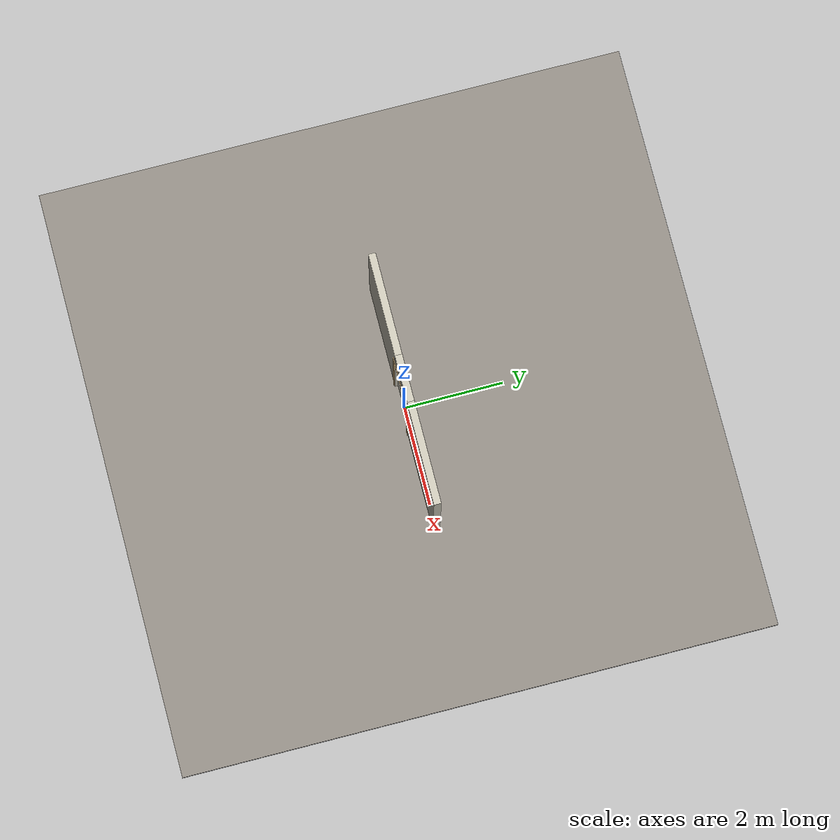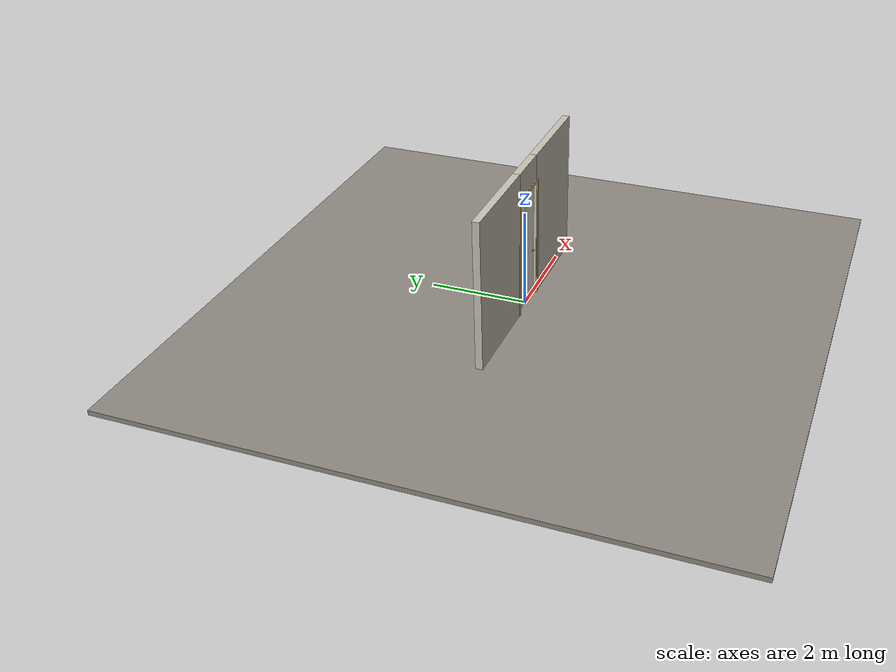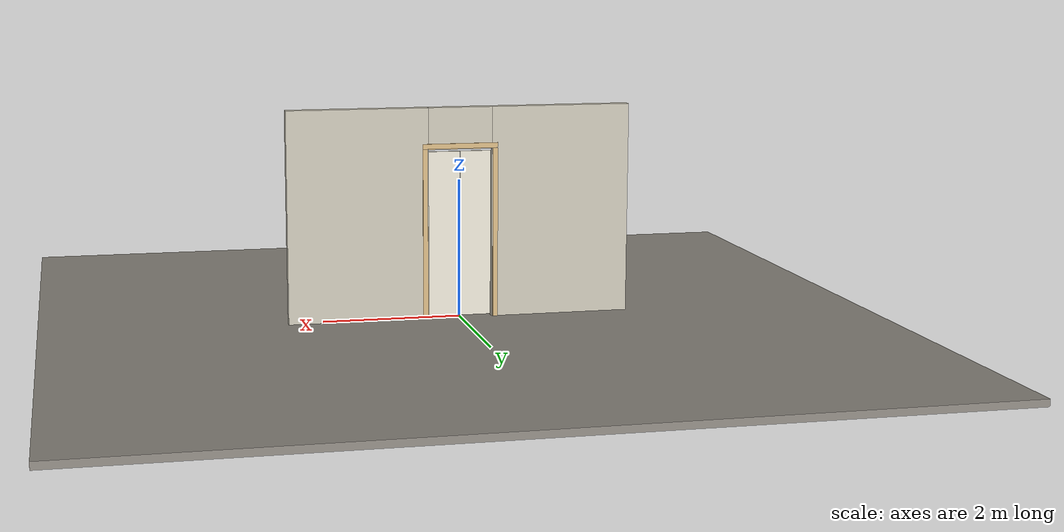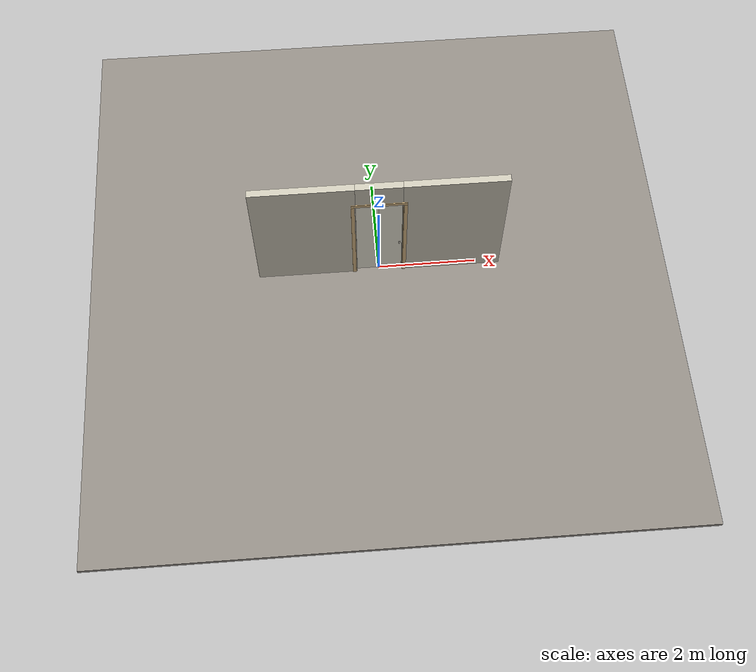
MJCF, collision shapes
<?xml version="1.0" ?>
<mujoco model="db0137_bifold_full">
  <compiler angle="radian" meshdir="../../hardware" texturedir="../../textures" autolimits="true" inertiafromgeom="false"/>
  <option timestep="0.002" integrator="implicitfast" cone="elliptic" impratio="10" noslip_iterations="3">
    <flag multiccd="enable"/>
  </option>
  <size memory="16M"/>
  <default>
    <geom condim="4" solref="0.005 1" solimp="0.95 0.99 0.001"/>
    <joint solreflimit="0.005 1" solimplimit="0.95 0.99 0.001"/>
    <tendon solreflimit="0.005 1"/>
    <equality solref="0.002 1"/>
  </default>
  <visual>
    <headlight ambient="0.4 0.4 0.4" diffuse="0.7 0.7 0.7" specular="0.2 0.2 0.2"/>
    <quality shadowsize="4096"/>
    <map znear="0.01" zfar="60"/>
  </visual>
  <asset>
    <mesh name="knob_13f7a2a65f" file="knob_13f7a2a65f.obj"/>
    <material name="mat_floor" rgba="0.55 0.53 0.5 1" specular="0.2" shininess="0.15" reflectance="0"/>
    <material name="mat_wall" rgba="0.78 0.76 0.7 1" specular="0.2" shininess="0.1" reflectance="0"/>
    <material name="mat_frame" rgba="0.82 0.7 0.5 1" specular="0.2" shininess="0.45" reflectance="0"/>
    <material name="mat_track" rgba="0.8 0.81 0.83 1" specular="0.8" shininess="0.6" reflectance="0.4"/>
    <material name="mat_hinge" rgba="0.65 0.66 0.68 1" specular="0.74" shininess="0.5" reflectance="0.36"/>
    <material name="mat_panel_0_0" rgba="0.9 0.88 0.82 1" specular="0.2" shininess="0.44" reflectance="0"/>
    <material name="mat_panel_0_0_louver" rgba="0.765 0.748 0.697 1" specular="0.2" shininess="0.4" reflectance="0"/>
    <material name="mat_panel_0_1" rgba="0.9 0.88 0.82 1" specular="0.2" shininess="0.44" reflectance="0"/>
    <material name="mat_panel_0_1_louver" rgba="0.765 0.748 0.697 1" specular="0.2" shininess="0.4" reflectance="0"/>
    <material name="mat_op_nickel_satin" rgba="0.72 0.7 0.66 1" specular="0.8" shininess="0.65" reflectance="0.4"/>
    <texture name="skybox" type="skybox" builtin="gradient" rgb1="0.6 0.7 0.85" rgb2="0.9 0.92 0.95" width="256" height="256"/>
  </asset>
  <worldbody>
    <light name="sun" pos="1.5 -2.5 4" dir="-0.3 0.5 -0.8" directional="true" diffuse="0.8 0.8 0.8" specular="0.3 0.3 0.3" castshadow="true"/>
    <light name="fill" pos="-1.5 2.5 3" dir="0.3 -0.5 -0.7" directional="true" diffuse="0.35 0.35 0.4" castshadow="false"/>
    <camera name="robot_view" pos="0 -2.926563 2.046937" xyaxes="1 0 0 0 0.26963 0.962964" fovy="52"/>
    <camera name="far_view" pos="0 2.926563 2.046937" xyaxes="-1 0 0 0 -0.26963 0.962964" fovy="52"/>
    <camera name="iso" pos="2.224187 -2.458313 2.515188" xyaxes="0.741536 0.670913 0 -0.242917 0.268487 0.932151" fovy="46"/>
    <camera name="detail_handle" pos="0.5885 -0.8475 1.28" xyaxes="0.97561 0.219512 0 -0.070934 0.315262 0.94635" fovy="38"/>
    <geom name="floor" type="box" size="6 6 0.05" pos="0 0 -0.05" material="mat_floor" group="0" contype="1" conaffinity="1" friction="0.8 0.005 0.0001" density="2400"/>
    <geom name="wall_left" type="box" size="1.01775 0.0725 1.5275" pos="-1.48225 0 1.5275" material="mat_wall" group="0" contype="1" conaffinity="1" friction="0.6 0.005 0.0001" density="800"/>
    <geom name="wall_right" type="box" size="1.01775 0.0725 1.5275" pos="1.48225 0 1.5275" material="mat_wall" group="0" contype="1" conaffinity="1" friction="0.6 0.005 0.0001" density="800"/>
    <geom name="wall_header" type="box" size="0.4645 0.0725 0.3" pos="0 0 2.755" material="mat_wall" group="0" contype="1" conaffinity="1" friction="0.6 0.005 0.0001" density="800"/>
    <geom name="jamb_hinge" type="box" size="0.0095 0.0725 1.2275" pos="-0.474 0 1.2275" material="mat_frame" group="0" contype="1" conaffinity="1" friction="0.6 0.005 0.0001" density="400"/>
    <geom name="jamb_strike" type="box" size="0.0095 0.0725 1.2275" pos="0.474 0 1.2275" material="mat_frame" group="0" contype="1" conaffinity="1" friction="0.6 0.005 0.0001" density="400"/>
    <geom name="stud_strike" type="box" size="0.015 0.0725 1.2275" pos="0.4985 0 1.2275" material="mat_wall" group="0" contype="1" conaffinity="1" friction="0.6 0.005 0.0001" density="500"/>
    <geom name="jamb_head" type="box" size="0.4985 0.0725 0.0095" pos="0.015 0 2.4645" material="mat_frame" group="0" contype="1" conaffinity="1" friction="0.6 0.005 0.0001" density="400"/>
    <geom name="head_stud" type="box" size="0.4985 0.0725 0.015" pos="0.015 0 2.489" material="mat_wall" group="0" contype="1" conaffinity="1" friction="0.6 0.005 0.0001" density="500"/>
    <geom name="casing_l_n" type="box" size="0.035 0.008 1.237" pos="-0.5135 -0.0805 1.2275" material="mat_frame" group="2" contype="0" conaffinity="0" density="400"/>
    <geom name="casing_r_n" type="box" size="0.035 0.008 1.237" pos="0.5135 -0.0805 1.2275" material="mat_frame" group="2" contype="0" conaffinity="0" density="400"/>
    <geom name="casing_h_n" type="box" size="0.5485 0.008 0.035" pos="0 -0.0805 2.504" material="mat_frame" group="2" contype="0" conaffinity="0" density="400"/>
    <geom name="casing_l_p" type="box" size="0.035 0.008 1.237" pos="-0.5135 0.0805 1.2275" material="mat_frame" group="2" contype="0" conaffinity="0" density="400"/>
    <geom name="casing_r_p" type="box" size="0.035 0.008 1.237" pos="0.5135 0.0805 1.2275" material="mat_frame" group="2" contype="0" conaffinity="0" density="400"/>
    <geom name="casing_h_p" type="box" size="0.5485 0.008 0.035" pos="0 0.0805 2.504" material="mat_frame" group="2" contype="0" conaffinity="0" density="400"/>
    <geom name="fold_track" type="box" size="0.4645 0.02 0.015" pos="0 0 2.44" material="mat_track" group="1" contype="0" conaffinity="0" density="2700"/>
    <site name="approach_point" pos="0 -1.5 0" quat="1 0 0 0" size="0.05" rgba="0.2 0.9 0.2 0.5" group="4"/>
    <site name="goal_point" pos="0 1.5 0" quat="1 0 0 0" size="0.05" rgba="0.2 0.9 0.2 0.5" group="4"/>
    <site name="door_plane_center" pos="0 0 1.2275" quat="1 0 0 0" size="0.02" rgba="0.2 0.9 0.2 0.5" group="4"/>
    <body name="panel_0_0" pos="-0.4645 0 0">
      <inertial pos="0.231628 0 1.221403" mass="28.262251" quat="0.500146 0.500146 0.499854 -0.499854" diaginertia="0.472680454 13.599866691 14.066782577"/>
      <joint name="panel_0_0_hinge" type="hinge" axis="0 0 -1" pos="0.035 0 0" limited="true" range="0 1.48353" damping="1.17812" frictionloss="40.919828" armature="0.02"/>
      <geom name="panel_0_0_slab" type="box" size="0.223145 0.0175 1.2" pos="0.231855 0 1.22" material="mat_panel_0_0" group="0" contype="1" conaffinity="1" friction="0.4 0.005 0.0001" density="1"/>
      <geom name="panel_0_0_louver_0" type="box" size="0.133145 0.002 0.02709" pos="0.231855 0 1.2938" quat="0.953717 0.300706 0 0" material="mat_panel_0_0_louver" group="1" contype="0" conaffinity="0" density="1"/>
      <geom name="panel_0_0_louver_1" type="box" size="0.133145 0.002 0.02709" pos="0.231855 0 1.3454" quat="0.953717 0.300706 0 0" material="mat_panel_0_0_louver" group="1" contype="0" conaffinity="0" density="1"/>
      <geom name="panel_0_0_louver_2" type="box" size="0.133145 0.002 0.02709" pos="0.231855 0 1.397" quat="0.953717 0.300706 0 0" material="mat_panel_0_0_louver" group="1" contype="0" conaffinity="0" density="1"/>
      <geom name="panel_0_0_louver_3" type="box" size="0.133145 0.002 0.02709" pos="0.231855 0 1.4486" quat="0.953717 0.300706 0 0" material="mat_panel_0_0_louver" group="1" contype="0" conaffinity="0" density="1"/>
      <geom name="panel_0_0_louver_4" type="box" size="0.133145 0.002 0.02709" pos="0.231855 0 1.5002" quat="0.953717 0.300706 0 0" material="mat_panel_0_0_louver" group="1" contype="0" conaffinity="0" density="1"/>
      <geom name="panel_0_0_louver_5" type="box" size="0.133145 0.002 0.02709" pos="0.231855 0 1.5518" quat="0.953717 0.300706 0 0" material="mat_panel_0_0_louver" group="1" contype="0" conaffinity="0" density="1"/>
      <geom name="panel_0_0_louver_6" type="box" size="0.133145 0.002 0.02709" pos="0.231855 0 1.6034" quat="0.953717 0.300706 0 0" material="mat_panel_0_0_louver" group="1" contype="0" conaffinity="0" density="1"/>
      <geom name="panel_0_0_louver_7" type="box" size="0.133145 0.002 0.02709" pos="0.231855 0 1.655" quat="0.953717 0.300706 0 0" material="mat_panel_0_0_louver" group="1" contype="0" conaffinity="0" density="1"/>
      <geom name="panel_0_0_louver_8" type="box" size="0.133145 0.002 0.02709" pos="0.231855 0 1.7066" quat="0.953717 0.300706 0 0" material="mat_panel_0_0_louver" group="1" contype="0" conaffinity="0" density="1"/>
      <geom name="panel_0_0_louver_9" type="box" size="0.133145 0.002 0.02709" pos="0.231855 0 1.7582" quat="0.953717 0.300706 0 0" material="mat_panel_0_0_louver" group="1" contype="0" conaffinity="0" density="1"/>
      <geom name="panel_0_0_louver_10" type="box" size="0.133145 0.002 0.02709" pos="0.231855 0 1.8098" quat="0.953717 0.300706 0 0" material="mat_panel_0_0_louver" group="1" contype="0" conaffinity="0" density="1"/>
      <geom name="panel_0_0_louver_11" type="box" size="0.133145 0.002 0.02709" pos="0.231855 0 1.8614" quat="0.953717 0.300706 0 0" material="mat_panel_0_0_louver" group="1" contype="0" conaffinity="0" density="1"/>
      <geom name="panel_0_0_louver_12" type="box" size="0.133145 0.002 0.02709" pos="0.231855 0 1.913" quat="0.953717 0.300706 0 0" material="mat_panel_0_0_louver" group="1" contype="0" conaffinity="0" density="1"/>
      <geom name="panel_0_0_louver_13" type="box" size="0.133145 0.002 0.02709" pos="0.231855 0 1.9646" quat="0.953717 0.300706 0 0" material="mat_panel_0_0_louver" group="1" contype="0" conaffinity="0" density="1"/>
      <geom name="panel_0_0_louver_14" type="box" size="0.133145 0.002 0.02709" pos="0.231855 0 2.0162" quat="0.953717 0.300706 0 0" material="mat_panel_0_0_louver" group="1" contype="0" conaffinity="0" density="1"/>
      <geom name="panel_0_0_louver_15" type="box" size="0.133145 0.002 0.02709" pos="0.231855 0 2.0678" quat="0.953717 0.300706 0 0" material="mat_panel_0_0_louver" group="1" contype="0" conaffinity="0" density="1"/>
      <geom name="panel_0_0_louver_16" type="box" size="0.133145 0.002 0.02709" pos="0.231855 0 2.1194" quat="0.953717 0.300706 0 0" material="mat_panel_0_0_louver" group="1" contype="0" conaffinity="0" density="1"/>
      <geom name="panel_0_0_louver_17" type="box" size="0.133145 0.002 0.02709" pos="0.231855 0 2.171" quat="0.953717 0.300706 0 0" material="mat_panel_0_0_louver" group="1" contype="0" conaffinity="0" density="1"/>
      <geom name="panel_0_0_louver_18" type="box" size="0.133145 0.002 0.02709" pos="0.231855 0 2.2226" quat="0.953717 0.300706 0 0" material="mat_panel_0_0_louver" group="1" contype="0" conaffinity="0" density="1"/>
      <geom name="panel_0_0_louver_19" type="box" size="0.133145 0.002 0.02709" pos="0.231855 0 2.2742" quat="0.953717 0.300706 0 0" material="mat_panel_0_0_louver" group="1" contype="0" conaffinity="0" density="1"/>
      <geom name="panel_0_0_pivot_pin" type="cylinder" size="0.008 0.0105" pos="0.035 0 2.4205" material="mat_hinge" group="1" contype="0" conaffinity="0" density="7850"/>
      <body name="panel_0_1" pos="0.457 0 0">
        <inertial pos="0.051336 0.011274 1.196972" mass="29.549749" quat="0.474549 0.534039 0.463371 -0.524302" diaginertia="0.535450644 12.605243801 13.138680219"/>
        <joint name="panel_0_1_hinge" type="hinge" axis="0 0 -1" pos="0 0.0175 0" limited="true" range="-3.141593 0" damping="0.2" frictionloss="0.1" armature="0.005"/>
        <geom name="panel_0_1_slab" type="box" size="0.232 0.0175 1.2" pos="0.234 0 1.22" material="mat_panel_0_1" group="0" contype="1" conaffinity="1" friction="0.4 0.005 0.0001" density="1"/>
        <geom name="panel_0_1_louver_0" type="box" size="0.142 0.002 0.02709" pos="0.234 0 1.2938" quat="0.953717 0.300706 0 0" material="mat_panel_0_1_louver" group="1" contype="0" conaffinity="0" density="1"/>
        <geom name="panel_0_1_louver_1" type="box" size="0.142 0.002 0.02709" pos="0.234 0 1.3454" quat="0.953717 0.300706 0 0" material="mat_panel_0_1_louver" group="1" contype="0" conaffinity="0" density="1"/>
        <geom name="panel_0_1_louver_2" type="box" size="0.142 0.002 0.02709" pos="0.234 0 1.397" quat="0.953717 0.300706 0 0" material="mat_panel_0_1_louver" group="1" contype="0" conaffinity="0" density="1"/>
        <geom name="panel_0_1_louver_3" type="box" size="0.142 0.002 0.02709" pos="0.234 0 1.4486" quat="0.953717 0.300706 0 0" material="mat_panel_0_1_louver" group="1" contype="0" conaffinity="0" density="1"/>
        <geom name="panel_0_1_louver_4" type="box" size="0.142 0.002 0.02709" pos="0.234 0 1.5002" quat="0.953717 0.300706 0 0" material="mat_panel_0_1_louver" group="1" contype="0" conaffinity="0" density="1"/>
        <geom name="panel_0_1_louver_5" type="box" size="0.142 0.002 0.02709" pos="0.234 0 1.5518" quat="0.953717 0.300706 0 0" material="mat_panel_0_1_louver" group="1" contype="0" conaffinity="0" density="1"/>
        <geom name="panel_0_1_louver_6" type="box" size="0.142 0.002 0.02709" pos="0.234 0 1.6034" quat="0.953717 0.300706 0 0" material="mat_panel_0_1_louver" group="1" contype="0" conaffinity="0" density="1"/>
        <geom name="panel_0_1_louver_7" type="box" size="0.142 0.002 0.02709" pos="0.234 0 1.655" quat="0.953717 0.300706 0 0" material="mat_panel_0_1_louver" group="1" contype="0" conaffinity="0" density="1"/>
        <geom name="panel_0_1_louver_8" type="box" size="0.142 0.002 0.02709" pos="0.234 0 1.7066" quat="0.953717 0.300706 0 0" material="mat_panel_0_1_louver" group="1" contype="0" conaffinity="0" density="1"/>
        <geom name="panel_0_1_louver_9" type="box" size="0.142 0.002 0.02709" pos="0.234 0 1.7582" quat="0.953717 0.300706 0 0" material="mat_panel_0_1_louver" group="1" contype="0" conaffinity="0" density="1"/>
        <geom name="panel_0_1_louver_10" type="box" size="0.142 0.002 0.02709" pos="0.234 0 1.8098" quat="0.953717 0.300706 0 0" material="mat_panel_0_1_louver" group="1" contype="0" conaffinity="0" density="1"/>
        <geom name="panel_0_1_louver_11" type="box" size="0.142 0.002 0.02709" pos="0.234 0 1.8614" quat="0.953717 0.300706 0 0" material="mat_panel_0_1_louver" group="1" contype="0" conaffinity="0" density="1"/>
        <geom name="panel_0_1_louver_12" type="box" size="0.142 0.002 0.02709" pos="0.234 0 1.913" quat="0.953717 0.300706 0 0" material="mat_panel_0_1_louver" group="1" contype="0" conaffinity="0" density="1"/>
        <geom name="panel_0_1_louver_13" type="box" size="0.142 0.002 0.02709" pos="0.234 0 1.9646" quat="0.953717 0.300706 0 0" material="mat_panel_0_1_louver" group="1" contype="0" conaffinity="0" density="1"/>
        <geom name="panel_0_1_louver_14" type="box" size="0.142 0.002 0.02709" pos="0.234 0 2.0162" quat="0.953717 0.300706 0 0" material="mat_panel_0_1_louver" group="1" contype="0" conaffinity="0" density="1"/>
        <geom name="panel_0_1_louver_15" type="box" size="0.142 0.002 0.02709" pos="0.234 0 2.0678" quat="0.953717 0.300706 0 0" material="mat_panel_0_1_louver" group="1" contype="0" conaffinity="0" density="1"/>
        <geom name="panel_0_1_louver_16" type="box" size="0.142 0.002 0.02709" pos="0.234 0 2.1194" quat="0.953717 0.300706 0 0" material="mat_panel_0_1_louver" group="1" contype="0" conaffinity="0" density="1"/>
        <geom name="panel_0_1_louver_17" type="box" size="0.142 0.002 0.02709" pos="0.234 0 2.171" quat="0.953717 0.300706 0 0" material="mat_panel_0_1_louver" group="1" contype="0" conaffinity="0" density="1"/>
        <geom name="panel_0_1_louver_18" type="box" size="0.142 0.002 0.02709" pos="0.234 0 2.2226" quat="0.953717 0.300706 0 0" material="mat_panel_0_1_louver" group="1" contype="0" conaffinity="0" density="1"/>
        <geom name="panel_0_1_louver_19" type="box" size="0.142 0.002 0.02709" pos="0.234 0 2.2742" quat="0.953717 0.300706 0 0" material="mat_panel_0_1_louver" group="1" contype="0" conaffinity="0" density="1"/>
        <geom name="panel_0_1_knuckle" type="cylinder" size="0.0045 1.19" pos="0 0.0175 1.22" material="mat_hinge" group="1" contype="0" conaffinity="0" density="7850"/>
        <geom name="panel_0_1_knob" type="mesh" mesh="knob_13f7a2a65f" pos="0.416 -0.0175 1" quat="0.707107 0.707107 0 0" material="mat_op_nickel_satin" group="1" contype="0" conaffinity="0" density="3000"/>
        <geom name="panel_0_1_knob_col" type="sphere" size="0.016" pos="0.416 -0.0475 1" material="mat_op_nickel_satin" group="0" contype="1" conaffinity="1" friction="0.6 0.005 0.0001" density="3000"/>
        <geom name="panel_0_1_knob_rose" type="cylinder" size="0.022 0.005" pos="0.416 -0.0225 1" quat="0.707107 -0.707107 0 0" material="mat_op_nickel_satin" group="1" contype="0" conaffinity="0" density="3000"/>
        <site name="panel_0_1_grip" pos="0.416 -0.0475 1" quat="1 0 0 0" size="0.012" rgba="0.2 0.9 0.2 0.5" group="4"/>
      </body>
    </body>
  </worldbody>
  <equality>
    <joint name="panel_0_1_couple" joint1="panel_0_1_hinge" joint2="panel_0_0_hinge" polycoef="0 -2 0 0 0" active="true"/>
  </equality>
  <sensor>
    <jointpos name="panel_0_0_hinge_pos" joint="panel_0_0_hinge"/>
    <jointvel name="panel_0_0_hinge_vel" joint="panel_0_0_hinge"/>
    <jointpos name="panel_0_1_hinge_pos" joint="panel_0_1_hinge"/>
    <jointvel name="panel_0_1_hinge_vel" joint="panel_0_1_hinge"/>
  </sensor>
</mujoco>
